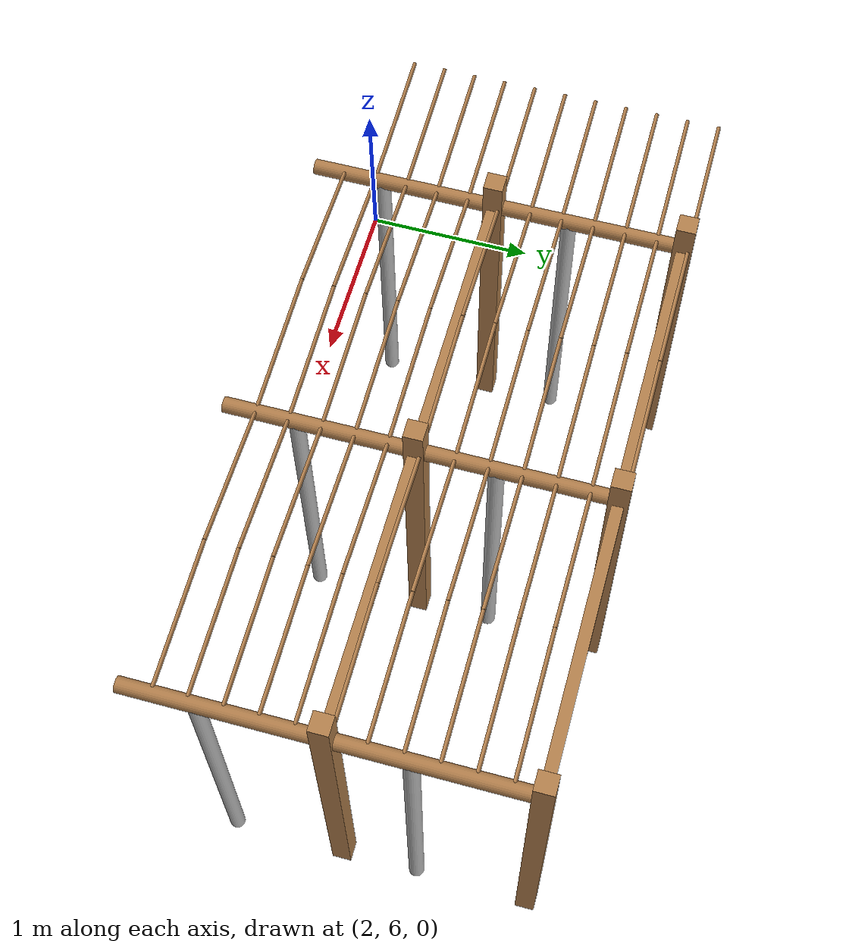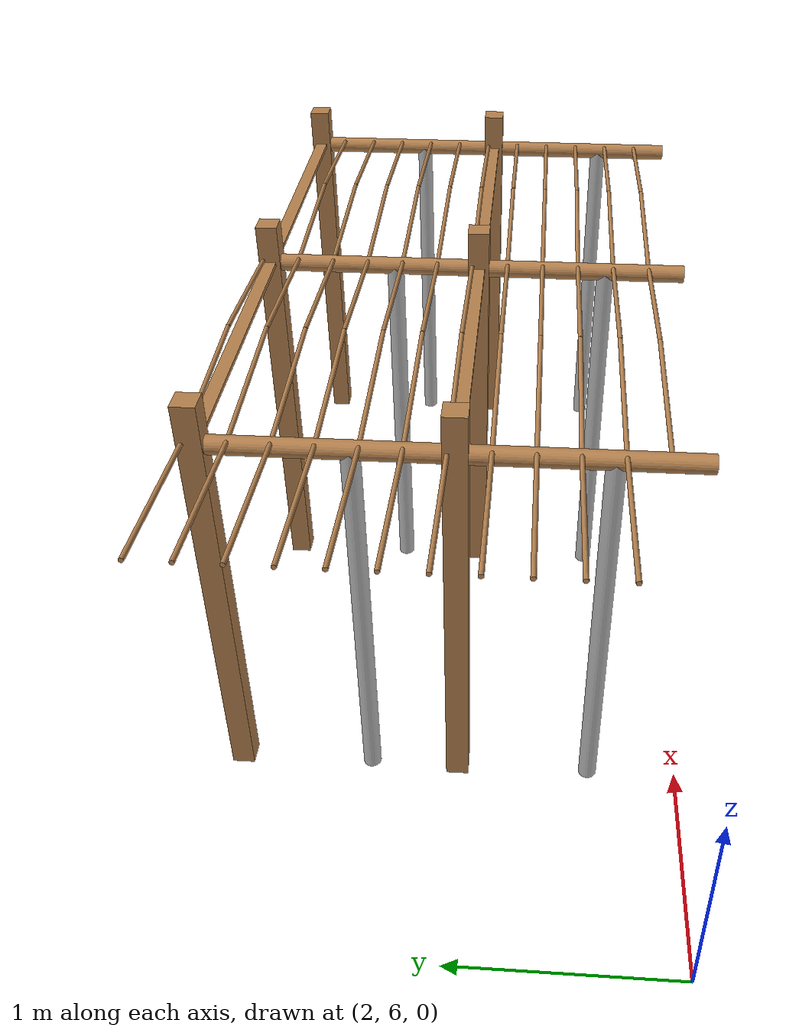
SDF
<sdf version="1.4">
 <model name="pergola">
  <include><name>post_29</name><pose>3.0 7.0 0 0 0 0</pose><uri>model://post</uri></include>
  <include><name>post_30</name><pose>3.0 8.0 0 0 0 0</pose><uri>model://post</uri></include>
  <include><name>post_40</name><pose>4.5 7.0 0 0 0 0</pose><uri>model://post</uri></include>
  <include><name>post_41</name><pose>4.5 8.0 0 0 0 0</pose><uri>model://post</uri></include>
  <include><name>post_51</name><pose>6.0 7.0 0 0 0 0</pose><uri>model://post</uri></include>
  <include><name>post_52</name><pose>6.0 8.0 0 0 0 0</pose><uri>model://post</uri></include>
  <link name="beam_29">
   <pose>3.75 7.0 1.81 0 0 0</pose>
   <collision name="collision"><geometry><box><size>1.5 0.06 0.02</size></box></geometry></collision>
   <visual name="visual">
    <geometry><box><size>1.5 0.06 0.02</size></box></geometry>
    <material><script><name>Gazebo/Wood</name></script></material>
   </visual>
   <inertial>
    <mass>5</mass>
    <inertia>
     <ixx>0.0016666666666666668</ixx>
     <ixy>0.0</ixy>
     <ixz>0.0</ixz>
     <iyy>0.9390000000000001</iyy>
     <iyz>0.0</iyz>
     <izz>0.9376666666666665</izz>
    </inertia>
   </inertial>
  </link>
  <link name="beam_30">
   <pose>3.75 8.0 1.81 0 0 0</pose>
   <collision name="collision"><geometry><box><size>1.5 0.06 0.02</size></box></geometry></collision>
   <visual name="visual">
    <geometry><box><size>1.5 0.06 0.02</size></box></geometry>
    <material><script><name>Gazebo/Wood</name></script></material>
   </visual>
   <inertial>
    <mass>5</mass>
    <inertia>
     <ixx>0.0016666666666666668</ixx>
     <ixy>0.0</ixy>
     <ixz>0.0</ixz>
     <iyy>0.9390000000000001</iyy>
     <iyz>0.0</iyz>
     <izz>0.9376666666666665</izz>
    </inertia>
   </inertial>
  </link>
  <link name="beam_40">
   <pose>5.25 7.0 1.81 0 0 0</pose>
   <collision name="collision"><geometry><box><size>1.5 0.06 0.02</size></box></geometry></collision>
   <visual name="visual">
    <geometry><box><size>1.5 0.06 0.02</size></box></geometry>
    <material><script><name>Gazebo/Wood</name></script></material>
   </visual>
   <inertial>
    <mass>5</mass>
    <inertia>
     <ixx>0.0016666666666666668</ixx>
     <ixy>0.0</ixy>
     <ixz>0.0</ixz>
     <iyy>0.9390000000000001</iyy>
     <iyz>0.0</iyz>
     <izz>0.9376666666666665</izz>
    </inertia>
   </inertial>
  </link>
  <link name="beam_41">
   <pose>5.25 8.0 1.81 0 0 0</pose>
   <collision name="collision"><geometry><box><size>1.5 0.06 0.02</size></box></geometry></collision>
   <visual name="visual">
    <geometry><box><size>1.5 0.06 0.02</size></box></geometry>
    <material><script><name>Gazebo/Wood</name></script></material>
   </visual>
   <inertial>
    <mass>5</mass>
    <inertia>
     <ixx>0.0016666666666666668</ixx>
     <ixy>0.0</ixy>
     <ixz>0.0</ixz>
     <iyy>0.9390000000000001</iyy>
     <iyz>0.0</iyz>
     <izz>0.9376666666666665</izz>
    </inertia>
   </inertial>
  </link>
  <include><name>tree_26</name><pose>3.0 6.4 0 0 0 0</pose><uri>model://tree_trunk</uri></include>
  <include><name>tree_27</name><pose>3.0 7.4 0 0 0 0</pose><uri>model://tree_trunk</uri></include>
  <include><name>tree_36</name><pose>4.5 6.4 0 0 0 0</pose><uri>model://tree_trunk</uri></include>
  <include><name>tree_37</name><pose>4.5 7.4 0 0 0 0</pose><uri>model://tree_trunk</uri></include>
  <include><name>tree_46</name><pose>6.0 6.4 0 0 0 0</pose><uri>model://tree_trunk</uri></include>
  <include><name>tree_47</name><pose>6.0 7.4 0 0 0 0</pose><uri>model://tree_trunk</uri></include>
  <link name="baseBranch_26">
   <pose>3.0 6.5 1.8 1.5707963267948966 0 0</pose>
   <collision name="collision">
    <geometry><cylinder><radius>0.04</radius><length>0.94</length></cylinder></geometry>
   </collision>
   <visual name="visual">
    <geometry><cylinder><radius>0.04</radius><length>0.94</length></cylinder></geometry>
    <material><script><name>Gazebo/WoodFloor</name></script></material>
   </visual>
   <inertial>
    <mass>10</mass>
    <inertia>
     <ixx>0.7403333333333334</ixx>
     <ixy>0.0</ixy>
     <ixz>0.0</ixz>
     <iyy>0.7403333333333334</iyy>
     <iyz>0.0</iyz>
     <izz>0.008</izz>
    </inertia>
   </inertial>
  </link>
  <link name="baseBranch_27">
   <pose>3.0 7.5 1.8 1.5707963267948966 0 0</pose>
   <collision name="collision">
    <geometry><cylinder><radius>0.04</radius><length>0.94</length></cylinder></geometry>
   </collision>
   <visual name="visual">
    <geometry><cylinder><radius>0.04</radius><length>0.94</length></cylinder></geometry>
    <material><script><name>Gazebo/WoodFloor</name></script></material>
   </visual>
   <inertial>
    <mass>10</mass>
    <inertia>
     <ixx>0.7403333333333334</ixx>
     <ixy>0.0</ixy>
     <ixz>0.0</ixz>
     <iyy>0.7403333333333334</iyy>
     <iyz>0.0</iyz>
     <izz>0.008</izz>
    </inertia>
   </inertial>
  </link>
  <link name="baseBranch_36">
   <pose>4.5 6.5 1.8 1.5707963267948966 0 0</pose>
   <collision name="collision">
    <geometry><cylinder><radius>0.04</radius><length>0.94</length></cylinder></geometry>
   </collision>
   <visual name="visual">
    <geometry><cylinder><radius>0.04</radius><length>0.94</length></cylinder></geometry>
    <material><script><name>Gazebo/WoodFloor</name></script></material>
   </visual>
   <inertial>
    <mass>10</mass>
    <inertia>
     <ixx>0.7403333333333334</ixx>
     <ixy>0.0</ixy>
     <ixz>0.0</ixz>
     <iyy>0.7403333333333334</iyy>
     <iyz>0.0</iyz>
     <izz>0.008</izz>
    </inertia>
   </inertial>
  </link>
  <link name="baseBranch_37">
   <pose>4.5 7.5 1.8 1.5707963267948966 0 0</pose>
   <collision name="collision">
    <geometry><cylinder><radius>0.04</radius><length>0.94</length></cylinder></geometry>
   </collision>
   <visual name="visual">
    <geometry><cylinder><radius>0.04</radius><length>0.94</length></cylinder></geometry>
    <material><script><name>Gazebo/WoodFloor</name></script></material>
   </visual>
   <inertial>
    <mass>10</mass>
    <inertia>
     <ixx>0.7403333333333334</ixx>
     <ixy>0.0</ixy>
     <ixz>0.0</ixz>
     <iyy>0.7403333333333334</iyy>
     <iyz>0.0</iyz>
     <izz>0.008</izz>
    </inertia>
   </inertial>
  </link>
  <link name="baseBranch_46">
   <pose>6.0 6.5 1.8 1.5707963267948966 0 0</pose>
   <collision name="collision">
    <geometry><cylinder><radius>0.04</radius><length>0.94</length></cylinder></geometry>
   </collision>
   <visual name="visual">
    <geometry><cylinder><radius>0.04</radius><length>0.94</length></cylinder></geometry>
    <material><script><name>Gazebo/WoodFloor</name></script></material>
   </visual>
   <inertial>
    <mass>10</mass>
    <inertia>
     <ixx>0.7403333333333334</ixx>
     <ixy>0.0</ixy>
     <ixz>0.0</ixz>
     <iyy>0.7403333333333334</iyy>
     <iyz>0.0</iyz>
     <izz>0.008</izz>
    </inertia>
   </inertial>
  </link>
  <link name="baseBranch_47">
   <pose>6.0 7.5 1.8 1.5707963267948966 0 0</pose>
   <collision name="collision">
    <geometry><cylinder><radius>0.04</radius><length>0.94</length></cylinder></geometry>
   </collision>
   <visual name="visual">
    <geometry><cylinder><radius>0.04</radius><length>0.94</length></cylinder></geometry>
    <material><script><name>Gazebo/WoodFloor</name></script></material>
   </visual>
   <inertial>
    <mass>10</mass>
    <inertia>
     <ixx>0.7403333333333334</ixx>
     <ixy>0.0</ixy>
     <ixz>0.0</ixz>
     <iyy>0.7403333333333334</iyy>
     <iyz>0.0</iyz>
     <izz>0.008</izz>
    </inertia>
   </inertial>
  </link>
  <link name="vine_197">
   <pose>2.625 6.363333333333333 1.85 0 -1.5042281630190728 0</pose>
   <collision name="collision">
    <geometry><cylinder><radius>0.01</radius><length>0.7516648189186453</length></cylinder></geometry>
   </collision>
   <visual name="visual">
    <geometry><cylinder><radius>0.01</radius><length>0.7516648189186453</length></cylinder></geometry>
    <material><script><name>Gazebo/WoodFloor</name></script></material>
   </visual>
   <inertial>
    <mass>5</mass>
    <inertia>
     <ixx>0.23554166666666657</ixx>
     <ixy>0.0</ixy>
     <ixz>0.0</ixz>
     <iyy>0.23554166666666657</iyy>
     <iyz>0.0</iyz>
     <izz>0.00025</izz>
    </inertia>
   </inertial>
  </link>
  <link name="vine_199">
   <pose>2.625 6.53 1.85 0 -1.5042281630190728 0</pose>
   <collision name="collision">
    <geometry><cylinder><radius>0.01</radius><length>0.7516648189186453</length></cylinder></geometry>
   </collision>
   <visual name="visual">
    <geometry><cylinder><radius>0.01</radius><length>0.7516648189186453</length></cylinder></geometry>
    <material><script><name>Gazebo/WoodFloor</name></script></material>
   </visual>
   <inertial>
    <mass>5</mass>
    <inertia>
     <ixx>0.23554166666666657</ixx>
     <ixy>0.0</ixy>
     <ixz>0.0</ixz>
     <iyy>0.23554166666666657</iyy>
     <iyz>0.0</iyz>
     <izz>0.00025</izz>
    </inertia>
   </inertial>
  </link>
  <link name="vine_201">
   <pose>2.625 6.696666666666666 1.85 0 -1.5042281630190728 0</pose>
   <collision name="collision">
    <geometry><cylinder><radius>0.01</radius><length>0.7516648189186453</length></cylinder></geometry>
   </collision>
   <visual name="visual">
    <geometry><cylinder><radius>0.01</radius><length>0.7516648189186453</length></cylinder></geometry>
    <material><script><name>Gazebo/WoodFloor</name></script></material>
   </visual>
   <inertial>
    <mass>5</mass>
    <inertia>
     <ixx>0.23554166666666657</ixx>
     <ixy>0.0</ixy>
     <ixz>0.0</ixz>
     <iyy>0.23554166666666657</iyy>
     <iyz>0.0</iyz>
     <izz>0.00025</izz>
    </inertia>
   </inertial>
  </link>
  <link name="vine_203">
   <pose>2.625 6.863333333333333 1.85 0 -1.5042281630190728 0</pose>
   <collision name="collision">
    <geometry><cylinder><radius>0.01</radius><length>0.7516648189186453</length></cylinder></geometry>
   </collision>
   <visual name="visual">
    <geometry><cylinder><radius>0.01</radius><length>0.7516648189186453</length></cylinder></geometry>
    <material><script><name>Gazebo/WoodFloor</name></script></material>
   </visual>
   <inertial>
    <mass>5</mass>
    <inertia>
     <ixx>0.23554166666666657</ixx>
     <ixy>0.0</ixy>
     <ixz>0.0</ixz>
     <iyy>0.23554166666666657</iyy>
     <iyz>0.0</iyz>
     <izz>0.00025</izz>
    </inertia>
   </inertial>
  </link>
  <link name="vine_205">
   <pose>2.625 7.03 1.85 0 -1.5042281630190728 0</pose>
   <collision name="collision">
    <geometry><cylinder><radius>0.01</radius><length>0.7516648189186453</length></cylinder></geometry>
   </collision>
   <visual name="visual">
    <geometry><cylinder><radius>0.01</radius><length>0.7516648189186453</length></cylinder></geometry>
    <material><script><name>Gazebo/WoodFloor</name></script></material>
   </visual>
   <inertial>
    <mass>5</mass>
    <inertia>
     <ixx>0.23554166666666657</ixx>
     <ixy>0.0</ixy>
     <ixz>0.0</ixz>
     <iyy>0.23554166666666657</iyy>
     <iyz>0.0</iyz>
     <izz>0.00025</izz>
    </inertia>
   </inertial>
  </link>
  <link name="vine_207">
   <pose>2.625 7.196666666666666 1.85 0 -1.5042281630190728 0</pose>
   <collision name="collision">
    <geometry><cylinder><radius>0.01</radius><length>0.7516648189186453</length></cylinder></geometry>
   </collision>
   <visual name="visual">
    <geometry><cylinder><radius>0.01</radius><length>0.7516648189186453</length></cylinder></geometry>
    <material><script><name>Gazebo/WoodFloor</name></script></material>
   </visual>
   <inertial>
    <mass>5</mass>
    <inertia>
     <ixx>0.23554166666666657</ixx>
     <ixy>0.0</ixy>
     <ixz>0.0</ixz>
     <iyy>0.23554166666666657</iyy>
     <iyz>0.0</iyz>
     <izz>0.00025</izz>
    </inertia>
   </inertial>
  </link>
  <link name="vine_209">
   <pose>2.625 7.363333333333333 1.85 0 -1.5042281630190728 0</pose>
   <collision name="collision">
    <geometry><cylinder><radius>0.01</radius><length>0.7516648189186453</length></cylinder></geometry>
   </collision>
   <visual name="visual">
    <geometry><cylinder><radius>0.01</radius><length>0.7516648189186453</length></cylinder></geometry>
    <material><script><name>Gazebo/WoodFloor</name></script></material>
   </visual>
   <inertial>
    <mass>5</mass>
    <inertia>
     <ixx>0.23554166666666657</ixx>
     <ixy>0.0</ixy>
     <ixz>0.0</ixz>
     <iyy>0.23554166666666657</iyy>
     <iyz>0.0</iyz>
     <izz>0.00025</izz>
    </inertia>
   </inertial>
  </link>
  <link name="vine_211">
   <pose>2.625 7.53 1.85 0 -1.5042281630190728 0</pose>
   <collision name="collision">
    <geometry><cylinder><radius>0.01</radius><length>0.7516648189186453</length></cylinder></geometry>
   </collision>
   <visual name="visual">
    <geometry><cylinder><radius>0.01</radius><length>0.7516648189186453</length></cylinder></geometry>
    <material><script><name>Gazebo/WoodFloor</name></script></material>
   </visual>
   <inertial>
    <mass>5</mass>
    <inertia>
     <ixx>0.23554166666666657</ixx>
     <ixy>0.0</ixy>
     <ixz>0.0</ixz>
     <iyy>0.23554166666666657</iyy>
     <iyz>0.0</iyz>
     <izz>0.00025</izz>
    </inertia>
   </inertial>
  </link>
  <link name="vine_213">
   <pose>2.625 7.696666666666666 1.85 0 -1.5042281630190728 0</pose>
   <collision name="collision">
    <geometry><cylinder><radius>0.01</radius><length>0.7516648189186453</length></cylinder></geometry>
   </collision>
   <visual name="visual">
    <geometry><cylinder><radius>0.01</radius><length>0.7516648189186453</length></cylinder></geometry>
    <material><script><name>Gazebo/WoodFloor</name></script></material>
   </visual>
   <inertial>
    <mass>5</mass>
    <inertia>
     <ixx>0.23554166666666657</ixx>
     <ixy>0.0</ixy>
     <ixz>0.0</ixz>
     <iyy>0.23554166666666657</iyy>
     <iyz>0.0</iyz>
     <izz>0.00025</izz>
    </inertia>
   </inertial>
  </link>
  <link name="vine_215">
   <pose>2.625 7.863333333333333 1.85 0 -1.5042281630190728 0</pose>
   <collision name="collision">
    <geometry><cylinder><radius>0.01</radius><length>0.7516648189186453</length></cylinder></geometry>
   </collision>
   <visual name="visual">
    <geometry><cylinder><radius>0.01</radius><length>0.7516648189186453</length></cylinder></geometry>
    <material><script><name>Gazebo/WoodFloor</name></script></material>
   </visual>
   <inertial>
    <mass>5</mass>
    <inertia>
     <ixx>0.23554166666666657</ixx>
     <ixy>0.0</ixy>
     <ixz>0.0</ixz>
     <iyy>0.23554166666666657</iyy>
     <iyz>0.0</iyz>
     <izz>0.00025</izz>
    </inertia>
   </inertial>
  </link>
  <link name="vine_217">
   <pose>2.625 8.03 1.85 0 -1.5042281630190728 0</pose>
   <collision name="collision">
    <geometry><cylinder><radius>0.01</radius><length>0.7516648189186453</length></cylinder></geometry>
   </collision>
   <visual name="visual">
    <geometry><cylinder><radius>0.01</radius><length>0.7516648189186453</length></cylinder></geometry>
    <material><script><name>Gazebo/WoodFloor</name></script></material>
   </visual>
   <inertial>
    <mass>5</mass>
    <inertia>
     <ixx>0.23554166666666657</ixx>
     <ixy>0.0</ixy>
     <ixz>0.0</ixz>
     <iyy>0.23554166666666657</iyy>
     <iyz>0.0</iyz>
     <izz>0.00025</izz>
    </inertia>
   </inertial>
  </link>
  <link name="vine_314">
   <pose>3.375 6.196666666666666 1.85 0 1.5042281630190728 0</pose>
   <collision name="collision">
    <geometry><cylinder><radius>0.01</radius><length>0.7516648189186453</length></cylinder></geometry>
   </collision>
   <visual name="visual">
    <geometry><cylinder><radius>0.01</radius><length>0.7516648189186453</length></cylinder></geometry>
    <material><script><name>Gazebo/WoodFloor</name></script></material>
   </visual>
   <inertial>
    <mass>5</mass>
    <inertia>
     <ixx>0.23554166666666657</ixx>
     <ixy>0.0</ixy>
     <ixz>0.0</ixz>
     <iyy>0.23554166666666657</iyy>
     <iyz>0.0</iyz>
     <izz>0.00025</izz>
    </inertia>
   </inertial>
  </link>
  <link name="vine_315">
   <pose>4.125 6.196666666666666 1.85 0 -1.5042281630190728 0</pose>
   <collision name="collision">
    <geometry><cylinder><radius>0.01</radius><length>0.7516648189186453</length></cylinder></geometry>
   </collision>
   <visual name="visual">
    <geometry><cylinder><radius>0.01</radius><length>0.7516648189186453</length></cylinder></geometry>
    <material><script><name>Gazebo/WoodFloor</name></script></material>
   </visual>
   <inertial>
    <mass>5</mass>
    <inertia>
     <ixx>0.23554166666666657</ixx>
     <ixy>0.0</ixy>
     <ixz>0.0</ixz>
     <iyy>0.23554166666666657</iyy>
     <iyz>0.0</iyz>
     <izz>0.00025</izz>
    </inertia>
   </inertial>
  </link>
  <link name="vine_316">
   <pose>3.375 6.363333333333333 1.85 0 1.5042281630190728 0</pose>
   <collision name="collision">
    <geometry><cylinder><radius>0.01</radius><length>0.7516648189186453</length></cylinder></geometry>
   </collision>
   <visual name="visual">
    <geometry><cylinder><radius>0.01</radius><length>0.7516648189186453</length></cylinder></geometry>
    <material><script><name>Gazebo/WoodFloor</name></script></material>
   </visual>
   <inertial>
    <mass>5</mass>
    <inertia>
     <ixx>0.23554166666666657</ixx>
     <ixy>0.0</ixy>
     <ixz>0.0</ixz>
     <iyy>0.23554166666666657</iyy>
     <iyz>0.0</iyz>
     <izz>0.00025</izz>
    </inertia>
   </inertial>
  </link>
  <link name="vine_317">
   <pose>4.125 6.363333333333333 1.85 0 -1.5042281630190728 0</pose>
   <collision name="collision">
    <geometry><cylinder><radius>0.01</radius><length>0.7516648189186453</length></cylinder></geometry>
   </collision>
   <visual name="visual">
    <geometry><cylinder><radius>0.01</radius><length>0.7516648189186453</length></cylinder></geometry>
    <material><script><name>Gazebo/WoodFloor</name></script></material>
   </visual>
   <inertial>
    <mass>5</mass>
    <inertia>
     <ixx>0.23554166666666657</ixx>
     <ixy>0.0</ixy>
     <ixz>0.0</ixz>
     <iyy>0.23554166666666657</iyy>
     <iyz>0.0</iyz>
     <izz>0.00025</izz>
    </inertia>
   </inertial>
  </link>
  <link name="vine_318">
   <pose>3.375 6.53 1.85 0 1.5042281630190728 0</pose>
   <collision name="collision">
    <geometry><cylinder><radius>0.01</radius><length>0.7516648189186453</length></cylinder></geometry>
   </collision>
   <visual name="visual">
    <geometry><cylinder><radius>0.01</radius><length>0.7516648189186453</length></cylinder></geometry>
    <material><script><name>Gazebo/WoodFloor</name></script></material>
   </visual>
   <inertial>
    <mass>5</mass>
    <inertia>
     <ixx>0.23554166666666657</ixx>
     <ixy>0.0</ixy>
     <ixz>0.0</ixz>
     <iyy>0.23554166666666657</iyy>
     <iyz>0.0</iyz>
     <izz>0.00025</izz>
    </inertia>
   </inertial>
  </link>
  <link name="vine_319">
   <pose>4.125 6.53 1.85 0 -1.5042281630190728 0</pose>
   <collision name="collision">
    <geometry><cylinder><radius>0.01</radius><length>0.7516648189186453</length></cylinder></geometry>
   </collision>
   <visual name="visual">
    <geometry><cylinder><radius>0.01</radius><length>0.7516648189186453</length></cylinder></geometry>
    <material><script><name>Gazebo/WoodFloor</name></script></material>
   </visual>
   <inertial>
    <mass>5</mass>
    <inertia>
     <ixx>0.23554166666666657</ixx>
     <ixy>0.0</ixy>
     <ixz>0.0</ixz>
     <iyy>0.23554166666666657</iyy>
     <iyz>0.0</iyz>
     <izz>0.00025</izz>
    </inertia>
   </inertial>
  </link>
  <link name="vine_320">
   <pose>3.375 6.696666666666666 1.85 0 1.5042281630190728 0</pose>
   <collision name="collision">
    <geometry><cylinder><radius>0.01</radius><length>0.7516648189186453</length></cylinder></geometry>
   </collision>
   <visual name="visual">
    <geometry><cylinder><radius>0.01</radius><length>0.7516648189186453</length></cylinder></geometry>
    <material><script><name>Gazebo/WoodFloor</name></script></material>
   </visual>
   <inertial>
    <mass>5</mass>
    <inertia>
     <ixx>0.23554166666666657</ixx>
     <ixy>0.0</ixy>
     <ixz>0.0</ixz>
     <iyy>0.23554166666666657</iyy>
     <iyz>0.0</iyz>
     <izz>0.00025</izz>
    </inertia>
   </inertial>
  </link>
  <link name="vine_321">
   <pose>4.125 6.696666666666666 1.85 0 -1.5042281630190728 0</pose>
   <collision name="collision">
    <geometry><cylinder><radius>0.01</radius><length>0.7516648189186453</length></cylinder></geometry>
   </collision>
   <visual name="visual">
    <geometry><cylinder><radius>0.01</radius><length>0.7516648189186453</length></cylinder></geometry>
    <material><script><name>Gazebo/WoodFloor</name></script></material>
   </visual>
   <inertial>
    <mass>5</mass>
    <inertia>
     <ixx>0.23554166666666657</ixx>
     <ixy>0.0</ixy>
     <ixz>0.0</ixz>
     <iyy>0.23554166666666657</iyy>
     <iyz>0.0</iyz>
     <izz>0.00025</izz>
    </inertia>
   </inertial>
  </link>
  <link name="vine_322">
   <pose>3.375 6.863333333333333 1.85 0 1.5042281630190728 0</pose>
   <collision name="collision">
    <geometry><cylinder><radius>0.01</radius><length>0.7516648189186453</length></cylinder></geometry>
   </collision>
   <visual name="visual">
    <geometry><cylinder><radius>0.01</radius><length>0.7516648189186453</length></cylinder></geometry>
    <material><script><name>Gazebo/WoodFloor</name></script></material>
   </visual>
   <inertial>
    <mass>5</mass>
    <inertia>
     <ixx>0.23554166666666657</ixx>
     <ixy>0.0</ixy>
     <ixz>0.0</ixz>
     <iyy>0.23554166666666657</iyy>
     <iyz>0.0</iyz>
     <izz>0.00025</izz>
    </inertia>
   </inertial>
  </link>
  <link name="vine_323">
   <pose>4.125 6.863333333333333 1.85 0 -1.5042281630190728 0</pose>
   <collision name="collision">
    <geometry><cylinder><radius>0.01</radius><length>0.7516648189186453</length></cylinder></geometry>
   </collision>
   <visual name="visual">
    <geometry><cylinder><radius>0.01</radius><length>0.7516648189186453</length></cylinder></geometry>
    <material><script><name>Gazebo/WoodFloor</name></script></material>
   </visual>
   <inertial>
    <mass>5</mass>
    <inertia>
     <ixx>0.23554166666666657</ixx>
     <ixy>0.0</ixy>
     <ixz>0.0</ixz>
     <iyy>0.23554166666666657</iyy>
     <iyz>0.0</iyz>
     <izz>0.00025</izz>
    </inertia>
   </inertial>
  </link>
  <link name="vine_324">
   <pose>3.375 7.03 1.85 0 1.5042281630190728 0</pose>
   <collision name="collision">
    <geometry><cylinder><radius>0.01</radius><length>0.7516648189186453</length></cylinder></geometry>
   </collision>
   <visual name="visual">
    <geometry><cylinder><radius>0.01</radius><length>0.7516648189186453</length></cylinder></geometry>
    <material><script><name>Gazebo/WoodFloor</name></script></material>
   </visual>
   <inertial>
    <mass>5</mass>
    <inertia>
     <ixx>0.23554166666666657</ixx>
     <ixy>0.0</ixy>
     <ixz>0.0</ixz>
     <iyy>0.23554166666666657</iyy>
     <iyz>0.0</iyz>
     <izz>0.00025</izz>
    </inertia>
   </inertial>
  </link>
  <link name="vine_325">
   <pose>4.125 7.03 1.85 0 -1.5042281630190728 0</pose>
   <collision name="collision">
    <geometry><cylinder><radius>0.01</radius><length>0.7516648189186453</length></cylinder></geometry>
   </collision>
   <visual name="visual">
    <geometry><cylinder><radius>0.01</radius><length>0.7516648189186453</length></cylinder></geometry>
    <material><script><name>Gazebo/WoodFloor</name></script></material>
   </visual>
   <inertial>
    <mass>5</mass>
    <inertia>
     <ixx>0.23554166666666657</ixx>
     <ixy>0.0</ixy>
     <ixz>0.0</ixz>
     <iyy>0.23554166666666657</iyy>
     <iyz>0.0</iyz>
     <izz>0.00025</izz>
    </inertia>
   </inertial>
  </link>
  <link name="vine_326">
   <pose>3.375 7.196666666666666 1.85 0 1.5042281630190728 0</pose>
   <collision name="collision">
    <geometry><cylinder><radius>0.01</radius><length>0.7516648189186453</length></cylinder></geometry>
   </collision>
   <visual name="visual">
    <geometry><cylinder><radius>0.01</radius><length>0.7516648189186453</length></cylinder></geometry>
    <material><script><name>Gazebo/WoodFloor</name></script></material>
   </visual>
   <inertial>
    <mass>5</mass>
    <inertia>
     <ixx>0.23554166666666657</ixx>
     <ixy>0.0</ixy>
     <ixz>0.0</ixz>
     <iyy>0.23554166666666657</iyy>
     <iyz>0.0</iyz>
     <izz>0.00025</izz>
    </inertia>
   </inertial>
  </link>
  <link name="vine_327">
   <pose>4.125 7.196666666666666 1.85 0 -1.5042281630190728 0</pose>
   <collision name="collision">
    <geometry><cylinder><radius>0.01</radius><length>0.7516648189186453</length></cylinder></geometry>
   </collision>
   <visual name="visual">
    <geometry><cylinder><radius>0.01</radius><length>0.7516648189186453</length></cylinder></geometry>
    <material><script><name>Gazebo/WoodFloor</name></script></material>
   </visual>
   <inertial>
    <mass>5</mass>
    <inertia>
     <ixx>0.23554166666666657</ixx>
     <ixy>0.0</ixy>
     <ixz>0.0</ixz>
     <iyy>0.23554166666666657</iyy>
     <iyz>0.0</iyz>
     <izz>0.00025</izz>
    </inertia>
   </inertial>
  </link>
  <link name="vine_328">
   <pose>3.375 7.363333333333333 1.85 0 1.5042281630190728 0</pose>
   <collision name="collision">
    <geometry><cylinder><radius>0.01</radius><length>0.7516648189186453</length></cylinder></geometry>
   </collision>
   <visual name="visual">
    <geometry><cylinder><radius>0.01</radius><length>0.7516648189186453</length></cylinder></geometry>
    <material><script><name>Gazebo/WoodFloor</name></script></material>
   </visual>
   <inertial>
    <mass>5</mass>
    <inertia>
     <ixx>0.23554166666666657</ixx>
     <ixy>0.0</ixy>
     <ixz>0.0</ixz>
     <iyy>0.23554166666666657</iyy>
     <iyz>0.0</iyz>
     <izz>0.00025</izz>
    </inertia>
   </inertial>
  </link>
  <link name="vine_329">
   <pose>4.125 7.363333333333333 1.85 0 -1.5042281630190728 0</pose>
   <collision name="collision">
    <geometry><cylinder><radius>0.01</radius><length>0.7516648189186453</length></cylinder></geometry>
   </collision>
   <visual name="visual">
    <geometry><cylinder><radius>0.01</radius><length>0.7516648189186453</length></cylinder></geometry>
    <material><script><name>Gazebo/WoodFloor</name></script></material>
   </visual>
   <inertial>
    <mass>5</mass>
    <inertia>
     <ixx>0.23554166666666657</ixx>
     <ixy>0.0</ixy>
     <ixz>0.0</ixz>
     <iyy>0.23554166666666657</iyy>
     <iyz>0.0</iyz>
     <izz>0.00025</izz>
    </inertia>
   </inertial>
  </link>
  <link name="vine_330">
   <pose>3.375 7.53 1.85 0 1.5042281630190728 0</pose>
   <collision name="collision">
    <geometry><cylinder><radius>0.01</radius><length>0.7516648189186453</length></cylinder></geometry>
   </collision>
   <visual name="visual">
    <geometry><cylinder><radius>0.01</radius><length>0.7516648189186453</length></cylinder></geometry>
    <material><script><name>Gazebo/WoodFloor</name></script></material>
   </visual>
   <inertial>
    <mass>5</mass>
    <inertia>
     <ixx>0.23554166666666657</ixx>
     <ixy>0.0</ixy>
     <ixz>0.0</ixz>
     <iyy>0.23554166666666657</iyy>
     <iyz>0.0</iyz>
     <izz>0.00025</izz>
    </inertia>
   </inertial>
  </link>
  <link name="vine_331">
   <pose>4.125 7.53 1.85 0 -1.5042281630190728 0</pose>
   <collision name="collision">
    <geometry><cylinder><radius>0.01</radius><length>0.7516648189186453</length></cylinder></geometry>
   </collision>
   <visual name="visual">
    <geometry><cylinder><radius>0.01</radius><length>0.7516648189186453</length></cylinder></geometry>
    <material><script><name>Gazebo/WoodFloor</name></script></material>
   </visual>
   <inertial>
    <mass>5</mass>
    <inertia>
     <ixx>0.23554166666666657</ixx>
     <ixy>0.0</ixy>
     <ixz>0.0</ixz>
     <iyy>0.23554166666666657</iyy>
     <iyz>0.0</iyz>
     <izz>0.00025</izz>
    </inertia>
   </inertial>
  </link>
  <link name="vine_332">
   <pose>3.375 7.696666666666666 1.85 0 1.5042281630190728 0</pose>
   <collision name="collision">
    <geometry><cylinder><radius>0.01</radius><length>0.7516648189186453</length></cylinder></geometry>
   </collision>
   <visual name="visual">
    <geometry><cylinder><radius>0.01</radius><length>0.7516648189186453</length></cylinder></geometry>
    <material><script><name>Gazebo/WoodFloor</name></script></material>
   </visual>
   <inertial>
    <mass>5</mass>
    <inertia>
     <ixx>0.23554166666666657</ixx>
     <ixy>0.0</ixy>
     <ixz>0.0</ixz>
     <iyy>0.23554166666666657</iyy>
     <iyz>0.0</iyz>
     <izz>0.00025</izz>
    </inertia>
   </inertial>
  </link>
  <link name="vine_333">
   <pose>4.125 7.696666666666666 1.85 0 -1.5042281630190728 0</pose>
   <collision name="collision">
    <geometry><cylinder><radius>0.01</radius><length>0.7516648189186453</length></cylinder></geometry>
   </collision>
   <visual name="visual">
    <geometry><cylinder><radius>0.01</radius><length>0.7516648189186453</length></cylinder></geometry>
    <material><script><name>Gazebo/WoodFloor</name></script></material>
   </visual>
   <inertial>
    <mass>5</mass>
    <inertia>
     <ixx>0.23554166666666657</ixx>
     <ixy>0.0</ixy>
     <ixz>0.0</ixz>
     <iyy>0.23554166666666657</iyy>
     <iyz>0.0</iyz>
     <izz>0.00025</izz>
    </inertia>
   </inertial>
  </link>
  <link name="vine_334">
   <pose>3.375 7.863333333333333 1.85 0 1.5042281630190728 0</pose>
   <collision name="collision">
    <geometry><cylinder><radius>0.01</radius><length>0.7516648189186453</length></cylinder></geometry>
   </collision>
   <visual name="visual">
    <geometry><cylinder><radius>0.01</radius><length>0.7516648189186453</length></cylinder></geometry>
    <material><script><name>Gazebo/WoodFloor</name></script></material>
   </visual>
   <inertial>
    <mass>5</mass>
    <inertia>
     <ixx>0.23554166666666657</ixx>
     <ixy>0.0</ixy>
     <ixz>0.0</ixz>
     <iyy>0.23554166666666657</iyy>
     <iyz>0.0</iyz>
     <izz>0.00025</izz>
    </inertia>
   </inertial>
  </link>
  <link name="vine_335">
   <pose>4.125 7.863333333333333 1.85 0 -1.5042281630190728 0</pose>
   <collision name="collision">
    <geometry><cylinder><radius>0.01</radius><length>0.7516648189186453</length></cylinder></geometry>
   </collision>
   <visual name="visual">
    <geometry><cylinder><radius>0.01</radius><length>0.7516648189186453</length></cylinder></geometry>
    <material><script><name>Gazebo/WoodFloor</name></script></material>
   </visual>
   <inertial>
    <mass>5</mass>
    <inertia>
     <ixx>0.23554166666666657</ixx>
     <ixy>0.0</ixy>
     <ixz>0.0</ixz>
     <iyy>0.23554166666666657</iyy>
     <iyz>0.0</iyz>
     <izz>0.00025</izz>
    </inertia>
   </inertial>
  </link>
  <link name="vine_336">
   <pose>3.375 8.03 1.85 0 1.5042281630190728 0</pose>
   <collision name="collision">
    <geometry><cylinder><radius>0.01</radius><length>0.7516648189186453</length></cylinder></geometry>
   </collision>
   <visual name="visual">
    <geometry><cylinder><radius>0.01</radius><length>0.7516648189186453</length></cylinder></geometry>
    <material><script><name>Gazebo/WoodFloor</name></script></material>
   </visual>
   <inertial>
    <mass>5</mass>
    <inertia>
     <ixx>0.23554166666666657</ixx>
     <ixy>0.0</ixy>
     <ixz>0.0</ixz>
     <iyy>0.23554166666666657</iyy>
     <iyz>0.0</iyz>
     <izz>0.00025</izz>
    </inertia>
   </inertial>
  </link>
  <link name="vine_337">
   <pose>4.125 8.03 1.85 0 -1.5042281630190728 0</pose>
   <collision name="collision">
    <geometry><cylinder><radius>0.01</radius><length>0.7516648189186453</length></cylinder></geometry>
   </collision>
   <visual name="visual">
    <geometry><cylinder><radius>0.01</radius><length>0.7516648189186453</length></cylinder></geometry>
    <material><script><name>Gazebo/WoodFloor</name></script></material>
   </visual>
   <inertial>
    <mass>5</mass>
    <inertia>
     <ixx>0.23554166666666657</ixx>
     <ixy>0.0</ixy>
     <ixz>0.0</ixz>
     <iyy>0.23554166666666657</iyy>
     <iyz>0.0</iyz>
     <izz>0.00025</izz>
    </inertia>
   </inertial>
  </link>
  <link name="vine_434">
   <pose>4.875 6.196666666666666 1.85 0 1.5042281630190728 0</pose>
   <collision name="collision">
    <geometry><cylinder><radius>0.01</radius><length>0.7516648189186453</length></cylinder></geometry>
   </collision>
   <visual name="visual">
    <geometry><cylinder><radius>0.01</radius><length>0.7516648189186453</length></cylinder></geometry>
    <material><script><name>Gazebo/WoodFloor</name></script></material>
   </visual>
   <inertial>
    <mass>5</mass>
    <inertia>
     <ixx>0.23554166666666657</ixx>
     <ixy>0.0</ixy>
     <ixz>0.0</ixz>
     <iyy>0.23554166666666657</iyy>
     <iyz>0.0</iyz>
     <izz>0.00025</izz>
    </inertia>
   </inertial>
  </link>
  <link name="vine_435">
   <pose>5.625 6.196666666666666 1.85 0 -1.5042281630190728 0</pose>
   <collision name="collision">
    <geometry><cylinder><radius>0.01</radius><length>0.7516648189186453</length></cylinder></geometry>
   </collision>
   <visual name="visual">
    <geometry><cylinder><radius>0.01</radius><length>0.7516648189186453</length></cylinder></geometry>
    <material><script><name>Gazebo/WoodFloor</name></script></material>
   </visual>
   <inertial>
    <mass>5</mass>
    <inertia>
     <ixx>0.23554166666666657</ixx>
     <ixy>0.0</ixy>
     <ixz>0.0</ixz>
     <iyy>0.23554166666666657</iyy>
     <iyz>0.0</iyz>
     <izz>0.00025</izz>
    </inertia>
   </inertial>
  </link>
  <link name="vine_436">
   <pose>4.875 6.363333333333333 1.85 0 1.5042281630190728 0</pose>
   <collision name="collision">
    <geometry><cylinder><radius>0.01</radius><length>0.7516648189186453</length></cylinder></geometry>
   </collision>
   <visual name="visual">
    <geometry><cylinder><radius>0.01</radius><length>0.7516648189186453</length></cylinder></geometry>
    <material><script><name>Gazebo/WoodFloor</name></script></material>
   </visual>
   <inertial>
    <mass>5</mass>
    <inertia>
     <ixx>0.23554166666666657</ixx>
     <ixy>0.0</ixy>
     <ixz>0.0</ixz>
     <iyy>0.23554166666666657</iyy>
     <iyz>0.0</iyz>
     <izz>0.00025</izz>
    </inertia>
   </inertial>
  </link>
  <link name="vine_437">
   <pose>5.625 6.363333333333333 1.85 0 -1.5042281630190728 0</pose>
   <collision name="collision">
    <geometry><cylinder><radius>0.01</radius><length>0.7516648189186453</length></cylinder></geometry>
   </collision>
   <visual name="visual">
    <geometry><cylinder><radius>0.01</radius><length>0.7516648189186453</length></cylinder></geometry>
    <material><script><name>Gazebo/WoodFloor</name></script></material>
   </visual>
   <inertial>
    <mass>5</mass>
    <inertia>
     <ixx>0.23554166666666657</ixx>
     <ixy>0.0</ixy>
     <ixz>0.0</ixz>
     <iyy>0.23554166666666657</iyy>
     <iyz>0.0</iyz>
     <izz>0.00025</izz>
    </inertia>
   </inertial>
  </link>
  <link name="vine_438">
   <pose>4.875 6.53 1.85 0 1.5042281630190728 0</pose>
   <collision name="collision">
    <geometry><cylinder><radius>0.01</radius><length>0.7516648189186453</length></cylinder></geometry>
   </collision>
   <visual name="visual">
    <geometry><cylinder><radius>0.01</radius><length>0.7516648189186453</length></cylinder></geometry>
    <material><script><name>Gazebo/WoodFloor</name></script></material>
   </visual>
   <inertial>
    <mass>5</mass>
    <inertia>
     <ixx>0.23554166666666657</ixx>
     <ixy>0.0</ixy>
     <ixz>0.0</ixz>
     <iyy>0.23554166666666657</iyy>
     <iyz>0.0</iyz>
     <izz>0.00025</izz>
    </inertia>
   </inertial>
  </link>
  <link name="vine_439">
   <pose>5.625 6.53 1.85 0 -1.5042281630190728 0</pose>
   <collision name="collision">
    <geometry><cylinder><radius>0.01</radius><length>0.7516648189186453</length></cylinder></geometry>
   </collision>
   <visual name="visual">
    <geometry><cylinder><radius>0.01</radius><length>0.7516648189186453</length></cylinder></geometry>
    <material><script><name>Gazebo/WoodFloor</name></script></material>
   </visual>
   <inertial>
    <mass>5</mass>
    <inertia>
     <ixx>0.23554166666666657</ixx>
     <ixy>0.0</ixy>
     <ixz>0.0</ixz>
     <iyy>0.23554166666666657</iyy>
     <iyz>0.0</iyz>
     <izz>0.00025</izz>
    </inertia>
   </inertial>
  </link>
  <link name="vine_440">
   <pose>4.875 6.696666666666666 1.85 0 1.5042281630190728 0</pose>
   <collision name="collision">
    <geometry><cylinder><radius>0.01</radius><length>0.7516648189186453</length></cylinder></geometry>
   </collision>
   <visual name="visual">
    <geometry><cylinder><radius>0.01</radius><length>0.7516648189186453</length></cylinder></geometry>
    <material><script><name>Gazebo/WoodFloor</name></script></material>
   </visual>
   <inertial>
    <mass>5</mass>
    <inertia>
     <ixx>0.23554166666666657</ixx>
     <ixy>0.0</ixy>
     <ixz>0.0</ixz>
     <iyy>0.23554166666666657</iyy>
     <iyz>0.0</iyz>
     <izz>0.00025</izz>
    </inertia>
   </inertial>
  </link>
  <link name="vine_441">
   <pose>5.625 6.696666666666666 1.85 0 -1.5042281630190728 0</pose>
   <collision name="collision">
    <geometry><cylinder><radius>0.01</radius><length>0.7516648189186453</length></cylinder></geometry>
   </collision>
   <visual name="visual">
    <geometry><cylinder><radius>0.01</radius><length>0.7516648189186453</length></cylinder></geometry>
    <material><script><name>Gazebo/WoodFloor</name></script></material>
   </visual>
   <inertial>
    <mass>5</mass>
    <inertia>
     <ixx>0.23554166666666657</ixx>
     <ixy>0.0</ixy>
     <ixz>0.0</ixz>
     <iyy>0.23554166666666657</iyy>
     <iyz>0.0</iyz>
     <izz>0.00025</izz>
    </inertia>
   </inertial>
  </link>
  <link name="vine_442">
   <pose>4.875 6.863333333333333 1.85 0 1.5042281630190728 0</pose>
   <collision name="collision">
    <geometry><cylinder><radius>0.01</radius><length>0.7516648189186453</length></cylinder></geometry>
   </collision>
   <visual name="visual">
    <geometry><cylinder><radius>0.01</radius><length>0.7516648189186453</length></cylinder></geometry>
    <material><script><name>Gazebo/WoodFloor</name></script></material>
   </visual>
   <inertial>
    <mass>5</mass>
    <inertia>
     <ixx>0.23554166666666657</ixx>
     <ixy>0.0</ixy>
     <ixz>0.0</ixz>
     <iyy>0.23554166666666657</iyy>
     <iyz>0.0</iyz>
     <izz>0.00025</izz>
    </inertia>
   </inertial>
  </link>
  <link name="vine_443">
   <pose>5.625 6.863333333333333 1.85 0 -1.5042281630190728 0</pose>
   <collision name="collision">
    <geometry><cylinder><radius>0.01</radius><length>0.7516648189186453</length></cylinder></geometry>
   </collision>
   <visual name="visual">
    <geometry><cylinder><radius>0.01</radius><length>0.7516648189186453</length></cylinder></geometry>
    <material><script><name>Gazebo/WoodFloor</name></script></material>
   </visual>
   <inertial>
    <mass>5</mass>
    <inertia>
     <ixx>0.23554166666666657</ixx>
     <ixy>0.0</ixy>
     <ixz>0.0</ixz>
     <iyy>0.23554166666666657</iyy>
     <iyz>0.0</iyz>
     <izz>0.00025</izz>
    </inertia>
   </inertial>
  </link>
  <link name="vine_444">
   <pose>4.875 7.03 1.85 0 1.5042281630190728 0</pose>
   <collision name="collision">
    <geometry><cylinder><radius>0.01</radius><length>0.7516648189186453</length></cylinder></geometry>
   </collision>
   <visual name="visual">
    <geometry><cylinder><radius>0.01</radius><length>0.7516648189186453</length></cylinder></geometry>
    <material><script><name>Gazebo/WoodFloor</name></script></material>
   </visual>
   <inertial>
    <mass>5</mass>
    <inertia>
     <ixx>0.23554166666666657</ixx>
     <ixy>0.0</ixy>
     <ixz>0.0</ixz>
     <iyy>0.23554166666666657</iyy>
     <iyz>0.0</iyz>
     <izz>0.00025</izz>
    </inertia>
   </inertial>
  </link>
  <link name="vine_445">
   <pose>5.625 7.03 1.85 0 -1.5042281630190728 0</pose>
   <collision name="collision">
    <geometry><cylinder><radius>0.01</radius><length>0.7516648189186453</length></cylinder></geometry>
   </collision>
   <visual name="visual">
    <geometry><cylinder><radius>0.01</radius><length>0.7516648189186453</length></cylinder></geometry>
    <material><script><name>Gazebo/WoodFloor</name></script></material>
   </visual>
   <inertial>
    <mass>5</mass>
    <inertia>
     <ixx>0.23554166666666657</ixx>
     <ixy>0.0</ixy>
     <ixz>0.0</ixz>
     <iyy>0.23554166666666657</iyy>
     <iyz>0.0</iyz>
     <izz>0.00025</izz>
    </inertia>
   </inertial>
  </link>
  <link name="vine_446">
   <pose>4.875 7.196666666666666 1.85 0 1.5042281630190728 0</pose>
   <collision name="collision">
    <geometry><cylinder><radius>0.01</radius><length>0.7516648189186453</length></cylinder></geometry>
   </collision>
   <visual name="visual">
    <geometry><cylinder><radius>0.01</radius><length>0.7516648189186453</length></cylinder></geometry>
    <material><script><name>Gazebo/WoodFloor</name></script></material>
   </visual>
   <inertial>
    <mass>5</mass>
    <inertia>
     <ixx>0.23554166666666657</ixx>
     <ixy>0.0</ixy>
     <ixz>0.0</ixz>
     <iyy>0.23554166666666657</iyy>
     <iyz>0.0</iyz>
     <izz>0.00025</izz>
    </inertia>
   </inertial>
  </link>
  <link name="vine_447">
   <pose>5.625 7.196666666666666 1.85 0 -1.5042281630190728 0</pose>
   <collision name="collision">
    <geometry><cylinder><radius>0.01</radius><length>0.7516648189186453</length></cylinder></geometry>
   </collision>
   <visual name="visual">
    <geometry><cylinder><radius>0.01</radius><length>0.7516648189186453</length></cylinder></geometry>
    <material><script><name>Gazebo/WoodFloor</name></script></material>
   </visual>
   <inertial>
    <mass>5</mass>
    <inertia>
     <ixx>0.23554166666666657</ixx>
     <ixy>0.0</ixy>
     <ixz>0.0</ixz>
     <iyy>0.23554166666666657</iyy>
     <iyz>0.0</iyz>
     <izz>0.00025</izz>
    </inertia>
   </inertial>
  </link>
  <link name="vine_448">
   <pose>4.875 7.363333333333333 1.85 0 1.5042281630190728 0</pose>
   <collision name="collision">
    <geometry><cylinder><radius>0.01</radius><length>0.7516648189186453</length></cylinder></geometry>
   </collision>
   <visual name="visual">
    <geometry><cylinder><radius>0.01</radius><length>0.7516648189186453</length></cylinder></geometry>
    <material><script><name>Gazebo/WoodFloor</name></script></material>
   </visual>
   <inertial>
    <mass>5</mass>
    <inertia>
     <ixx>0.23554166666666657</ixx>
     <ixy>0.0</ixy>
     <ixz>0.0</ixz>
     <iyy>0.23554166666666657</iyy>
     <iyz>0.0</iyz>
     <izz>0.00025</izz>
    </inertia>
   </inertial>
  </link>
  <link name="vine_449">
   <pose>5.625 7.363333333333333 1.85 0 -1.5042281630190728 0</pose>
   <collision name="collision">
    <geometry><cylinder><radius>0.01</radius><length>0.7516648189186453</length></cylinder></geometry>
   </collision>
   <visual name="visual">
    <geometry><cylinder><radius>0.01</radius><length>0.7516648189186453</length></cylinder></geometry>
    <material><script><name>Gazebo/WoodFloor</name></script></material>
   </visual>
   <inertial>
    <mass>5</mass>
    <inertia>
     <ixx>0.23554166666666657</ixx>
     <ixy>0.0</ixy>
     <ixz>0.0</ixz>
     <iyy>0.23554166666666657</iyy>
     <iyz>0.0</iyz>
     <izz>0.00025</izz>
    </inertia>
   </inertial>
  </link>
  <link name="vine_450">
   <pose>4.875 7.53 1.85 0 1.5042281630190728 0</pose>
   <collision name="collision">
    <geometry><cylinder><radius>0.01</radius><length>0.7516648189186453</length></cylinder></geometry>
   </collision>
   <visual name="visual">
    <geometry><cylinder><radius>0.01</radius><length>0.7516648189186453</length></cylinder></geometry>
    <material><script><name>Gazebo/WoodFloor</name></script></material>
   </visual>
   <inertial>
    <mass>5</mass>
    <inertia>
     <ixx>0.23554166666666657</ixx>
     <ixy>0.0</ixy>
     <ixz>0.0</ixz>
     <iyy>0.23554166666666657</iyy>
     <iyz>0.0</iyz>
     <izz>0.00025</izz>
    </inertia>
   </inertial>
  </link>
  <link name="vine_451">
   <pose>5.625 7.53 1.85 0 -1.5042281630190728 0</pose>
   <collision name="collision">
    <geometry><cylinder><radius>0.01</radius><length>0.7516648189186453</length></cylinder></geometry>
   </collision>
   <visual name="visual">
    <geometry><cylinder><radius>0.01</radius><length>0.7516648189186453</length></cylinder></geometry>
    <material><script><name>Gazebo/WoodFloor</name></script></material>
   </visual>
   <inertial>
    <mass>5</mass>
    <inertia>
     <ixx>0.23554166666666657</ixx>
     <ixy>0.0</ixy>
     <ixz>0.0</ixz>
     <iyy>0.23554166666666657</iyy>
     <iyz>0.0</iyz>
     <izz>0.00025</izz>
    </inertia>
   </inertial>
  </link>
  <link name="vine_452">
   <pose>4.875 7.696666666666666 1.85 0 1.5042281630190728 0</pose>
   <collision name="collision">
    <geometry><cylinder><radius>0.01</radius><length>0.7516648189186453</length></cylinder></geometry>
   </collision>
   <visual name="visual">
    <geometry><cylinder><radius>0.01</radius><length>0.7516648189186453</length></cylinder></geometry>
    <material><script><name>Gazebo/WoodFloor</name></script></material>
   </visual>
   <inertial>
    <mass>5</mass>
    <inertia>
     <ixx>0.23554166666666657</ixx>
     <ixy>0.0</ixy>
     <ixz>0.0</ixz>
     <iyy>0.23554166666666657</iyy>
     <iyz>0.0</iyz>
     <izz>0.00025</izz>
    </inertia>
   </inertial>
  </link>
  <link name="vine_453">
   <pose>5.625 7.696666666666666 1.85 0 -1.5042281630190728 0</pose>
   <collision name="collision">
    <geometry><cylinder><radius>0.01</radius><length>0.7516648189186453</length></cylinder></geometry>
   </collision>
   <visual name="visual">
    <geometry><cylinder><radius>0.01</radius><length>0.7516648189186453</length></cylinder></geometry>
    <material><script><name>Gazebo/WoodFloor</name></script></material>
   </visual>
   <inertial>
    <mass>5</mass>
    <inertia>
     <ixx>0.23554166666666657</ixx>
     <ixy>0.0</ixy>
     <ixz>0.0</ixz>
     <iyy>0.23554166666666657</iyy>
     <iyz>0.0</iyz>
     <izz>0.00025</izz>
    </inertia>
   </inertial>
  </link>
  <link name="vine_454">
   <pose>4.875 7.863333333333333 1.85 0 1.5042281630190728 0</pose>
   <collision name="collision">
    <geometry><cylinder><radius>0.01</radius><length>0.7516648189186453</length></cylinder></geometry>
   </collision>
   <visual name="visual">
    <geometry><cylinder><radius>0.01</radius><length>0.7516648189186453</length></cylinder></geometry>
    <material><script><name>Gazebo/WoodFloor</name></script></material>
   </visual>
   <inertial>
    <mass>5</mass>
    <inertia>
     <ixx>0.23554166666666657</ixx>
     <ixy>0.0</ixy>
     <ixz>0.0</ixz>
     <iyy>0.23554166666666657</iyy>
     <iyz>0.0</iyz>
     <izz>0.00025</izz>
    </inertia>
   </inertial>
  </link>
  <link name="vine_455">
   <pose>5.625 7.863333333333333 1.85 0 -1.5042281630190728 0</pose>
   <collision name="collision">
    <geometry><cylinder><radius>0.01</radius><length>0.7516648189186453</length></cylinder></geometry>
   </collision>
   <visual name="visual">
    <geometry><cylinder><radius>0.01</radius><length>0.7516648189186453</length></cylinder></geometry>
    <material><script><name>Gazebo/WoodFloor</name></script></material>
   </visual>
   <inertial>
    <mass>5</mass>
    <inertia>
     <ixx>0.23554166666666657</ixx>
     <ixy>0.0</ixy>
     <ixz>0.0</ixz>
     <iyy>0.23554166666666657</iyy>
     <iyz>0.0</iyz>
     <izz>0.00025</izz>
    </inertia>
   </inertial>
  </link>
 </model>
</sdf>
